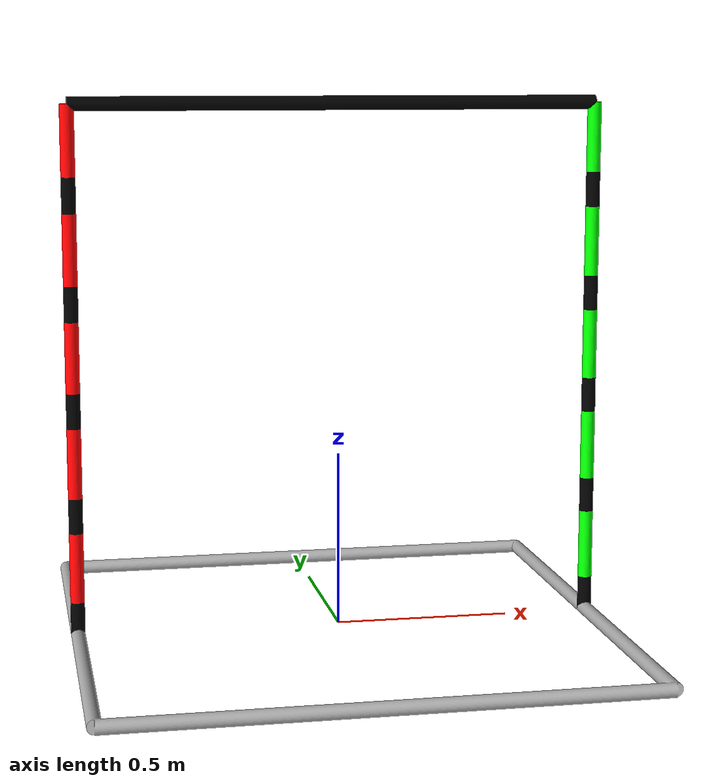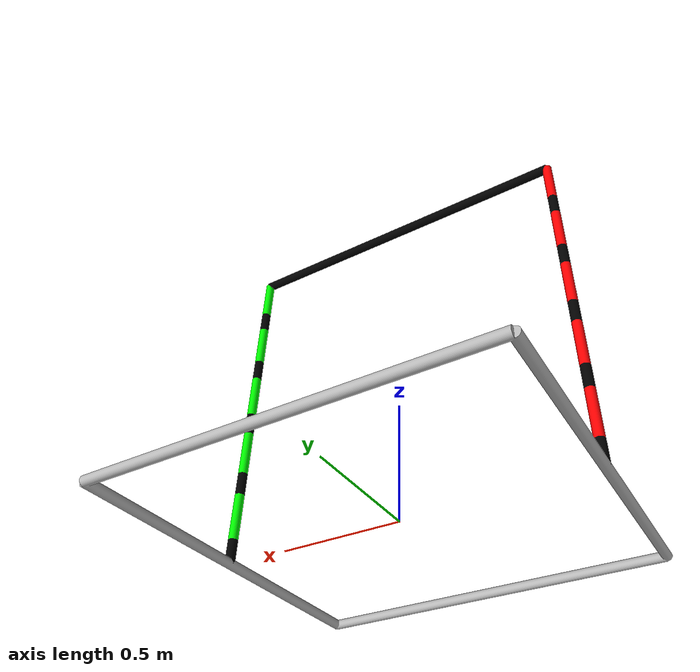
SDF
<?xml version='1.0' encoding='UTF-8'?>
<sdf version="1.6">
    <model name="red_green_gate">
        <static>true</static>
  <link name="pool">
      <visual name="visual">
                <geometry>
                    <mesh>
          <uri>model://red_green_gate/meshes/red_green_gate.dae</uri>
                    </mesh>
                </geometry>
            </visual>
    <collision name="pool_collision">
      <geometry>
        <mesh>
          <uri>model://red_green_gate/meshes/red_green_gate.dae</uri>
          <scale>1 1 1</scale>
        </mesh>
      </geometry>
      <surface>
        <contact>
          <collide_without_contact>false</collide_without_contact>
          <collide_bitmask>0x01</collide_bitmask>
        </contact>
      </surface>
    </collision>
  </link>
    </model>
</sdf>
